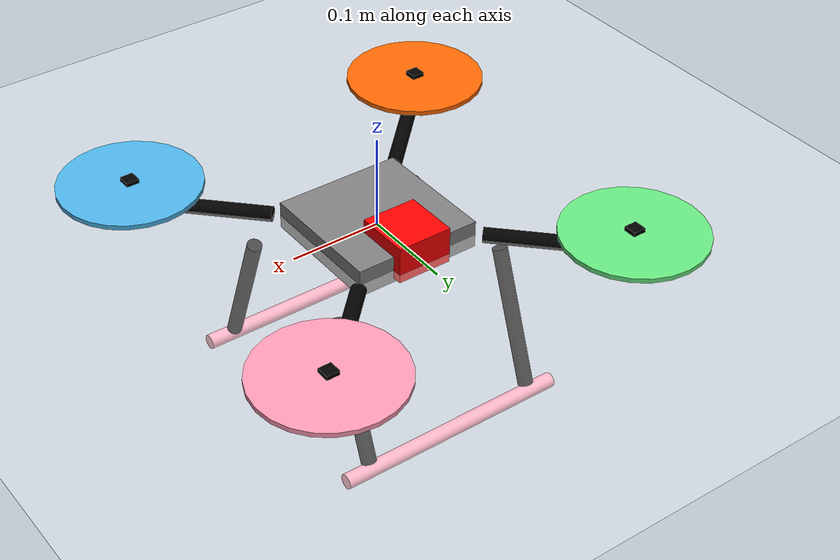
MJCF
<mujoco>
  <option timestep="0.001" density="1.204" viscosity="0.05" integrator="Euler"/>
  <size nstack="40000000" nconmax="500000"/>
  <option gravity="0 0 -9.81"/>
  <visual>
    <global elevation="-10"/>
  </visual>
  <default>
    <tendon limited="true" width="0.003" rgba="1 1 1 1"/>
    <geom friction=".2"/>
    <default class="weight">
      <geom rgba=".8 .4 .8 1"/>
      <site rgba=".8 .4 .8 1"/>
    </default>
    <default class="drone">
      <geom density="0.167" fluidshape="ellipsoid" friction="0.5 0.5 0.5"/>
      <default class="pink">
        <geom rgba="1 .6 .7 1"/>
        <site rgba="1 .6 .7 1"/>
      </default>
      <default class="blue">
        <geom rgba=".3 .7 .9 1"/>
        <site rgba=".3 .7 .9 1"/>
      </default>
      <default class="black">
        <geom rgba="0 0 0 1"/>
        <site rgba="0 0 0 1"/>
      </default>
      <default class="gray">
        <geom rgba=".5 .5 .5 1"/>
        <site rgba=".5 .5 .5 1"/>
      </default>
      <default class="green">
        <geom rgba=".4 .9 .5 1"/>
        <site rgba=".4 .9 .5 1"/>
      </default>
      <default class="orange">
        <geom rgba="1 .4 0 1"/>
        <site rgba="1 .4 0 1"/>
      </default>
    </default>
  </default>
  <asset>
    <!-- 白いテクスチャを設定 -->
    <texture name="grid" type="2d" builtin="checker" width="512" height="512" rgb1="1 1 1" rgb2="1 1 1"/>

    <!-- マテリアル（白色）を設定 -->
    <material name="white_ground" texture="grid" reflectance="0"/>
  </asset>
  <worldbody>
    <!-- 環境光（全体の明るさを調整） -->
    <light diffuse="1 1 1" specular="0.5 0.5 0.5" pos="0 0 5"/>
    <!-- 地面の設定（白色にする） -->
    <geom name="ground" type="plane" size="500 500 .01" pos="0 0 0.0" material="white_ground"/>

    <!-- 本体（ベース） -->
    <body name="drone_base" pos="0 0 0.0" childclass="gray">
      <freejoint/>
      <geom name="base" type="box" size="0.07 0.07 0.015" density="810"/>

      <body name="arm1" pos="0.13 -0.13 0" childclass="black">
        <geom name="arm_geom1" type="cylinder" size="0.008 0.077" euler="90 45 0" density="500"/>
        <body name="p1" pos="0.05 -0.05 0.02" childclass="blue">
          <geom name="prop1_geom" type="cylinder" size="0.076 0.0025" density="200"/>
        </body>
      </body>
      <body name="prop1" pos="0.18 -0.18 0.02" childclass="black">
        <geom name="p1_geom" type="box" size="0.007 0.007 0.007" density="500"/>
      </body>
      <body name="arm2" pos="-0.13 0.13 0" childclass="black">
        <geom name="arm_geom2" type="cylinder" size="0.008 0.077" euler="90 45 0" density="500"/>
        <body name="p2" pos="-0.05 0.05 0.02" childclass="green" gravcomp="0.0">
          <geom name="prop2_geom" type="cylinder" size="0.076 0.0025" density="200"/>
        </body>
      </body>
      <body name="prop2" pos="-0.18 0.18 0.02" childclass="black">
        <geom name="p2_geom" type="box" size="0.007 0.007 0.007" density="500"/>
      </body>

      <body name="arm3" pos="0.13 0.13 0" childclass="black">
        <geom name="arm_geom3" type="cylinder" size="0.008 0.077" euler="90 -45 0" density="500"/>
        <body name="p3" pos="0.05 0.05 0.02" childclass="pink">
          <geom name="prop3_geom" type="cylinder" size="0.076 0.0025" density="200"/>
        </body>
      </body>
      <body name="prop3" pos="0.18 0.18 0.02" childclass="black">
        <geom name="p3_geom" type="box" size="0.007 0.007 0.007" density="500"/>
      </body>

      <body name="arm4" pos="-0.13 -0.13 0" childclass="black">
        <geom name="arm_geom4" type="cylinder" size="0.008 0.077" euler="90 -45 0" density="500"/>
        <body name="p4" pos="-0.05 -0.05 0.02" childclass="orange">
          <geom name="prop4_geom" type="cylinder" size="0.076 0.0025" density="200"/>
        </body>
      </body>
      <body name="prop4" pos="-0.18 -0.18 0.02" childclass="black">
        <geom name="p4_geom" type="box" size="0.007 0.007 0.007" density="500"/>
      </body>

      <body name="reg1" pos="-0.1 0.1 -0.10" childclass="black">
        <geom name="reg_geom1" type="cylinder" size="0.008 0.077" euler="20 0 0" density="500"/>
      </body>
      <body name="reg2" pos="0.1 0.1 -0.10" childclass="black">
        <geom name="reg_geom2" type="cylinder" size="0.008 0.077" euler="20 0 0" density="500"/>
      </body>
      <body name="reg3" pos="-0.1 -0.1 -0.10" childclass="black">
        <geom name="reg_geom3" type="cylinder" size="0.008 0.077" euler="-20 0 0" density="500"/>
      </body>
      <body name="reg4" pos="0.1 -0.1 -0.10" childclass="black">
        <geom name="reg_geom4" type="cylinder" size="0.008 0.077" euler="-20 0 0" density="500"/>
      </body>
      <body name="reg_bottom1" pos="0.0 -0.13 -0.18" childclass="pink">
        <geom name="reg_bottom1" type="cylinder" size="0.008 0.13" euler="0 90 0" density="500"/>
      </body>
      <body name="reg_bottom2" pos="0.0 0.13 -0.18" childclass="pink">
        <geom name="reg_bottom2" type="cylinder" size="0.008 0.13" euler="0 90 0" density="500"/>
      </body>

    </body>
    <!-- 荷物（box） -->
    <body name="box" pos="0 0.05 0.01">
      <freejoint/>
      <geom name="box_geom" type="box" size="0.03 0.03 0.02" density="300" rgba="1 0 0 1"/>
    </body>
  </worldbody>

</mujoco>
